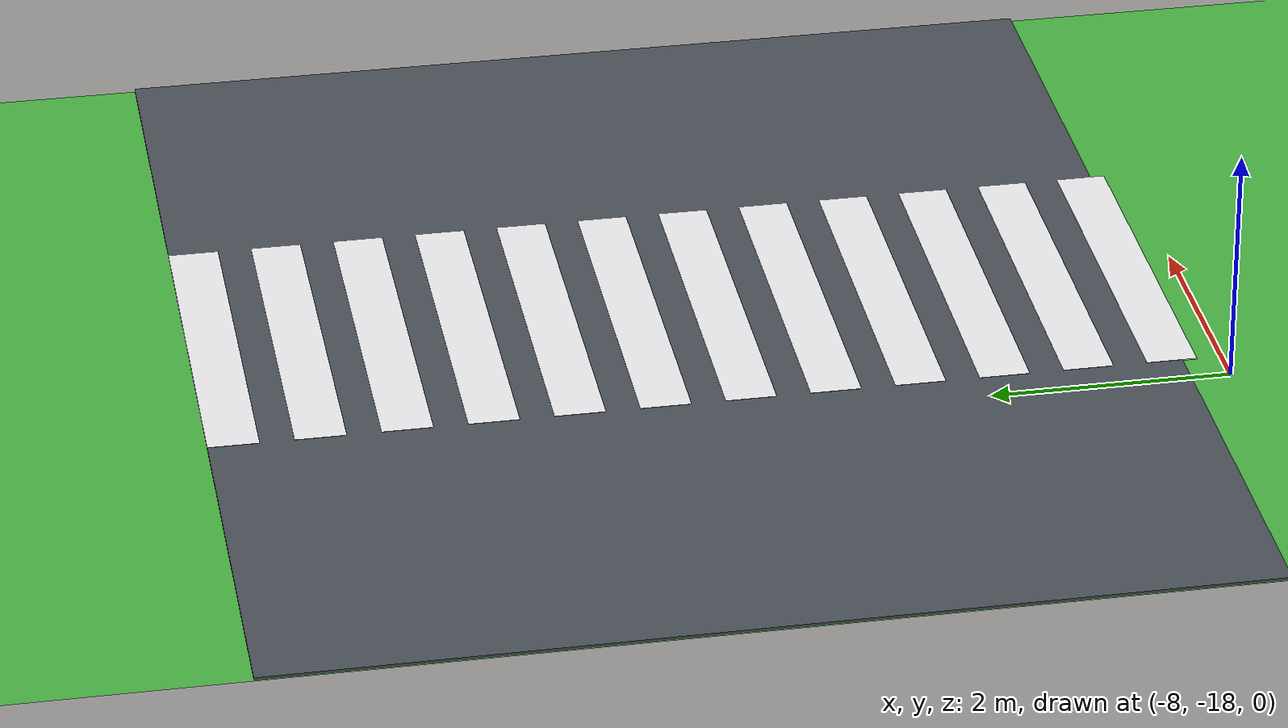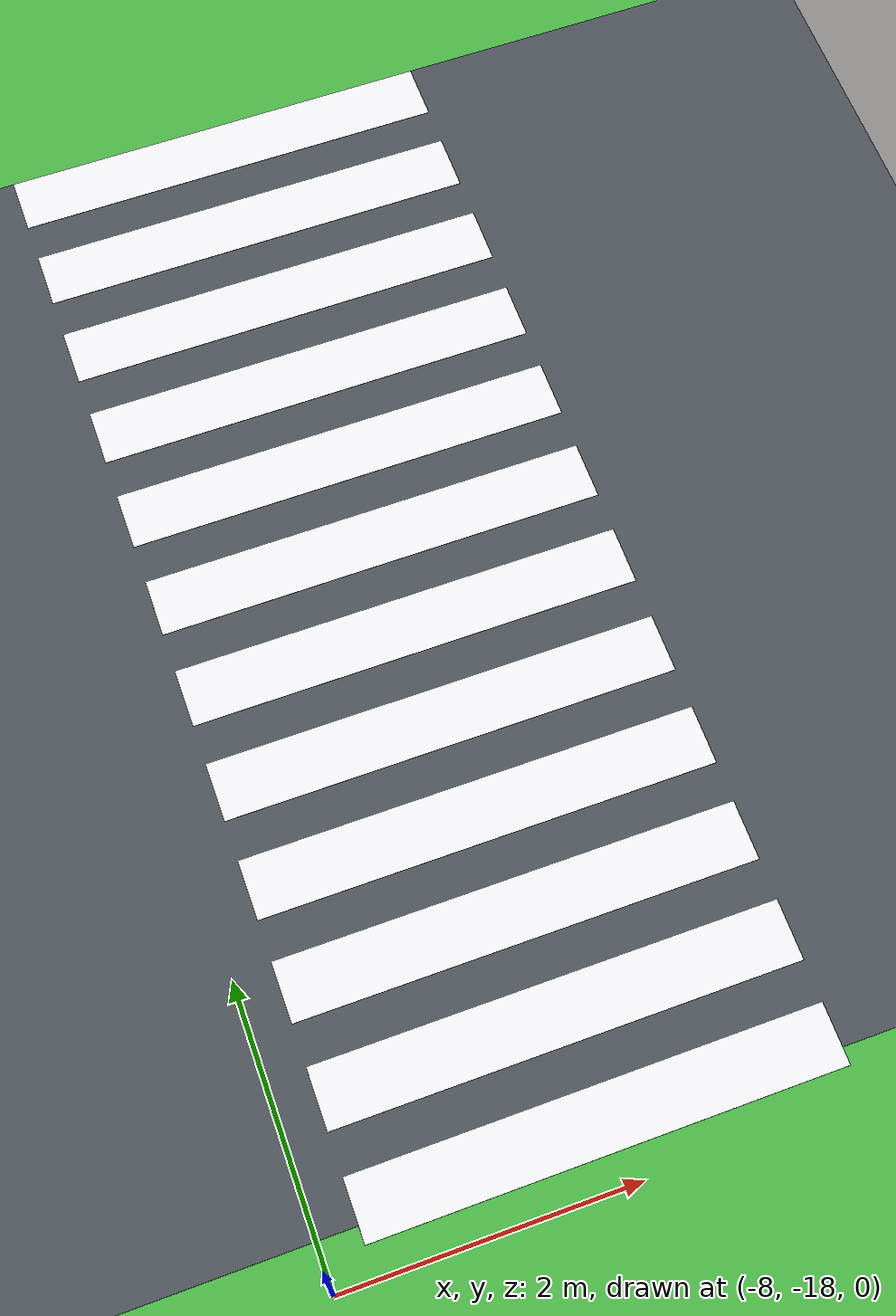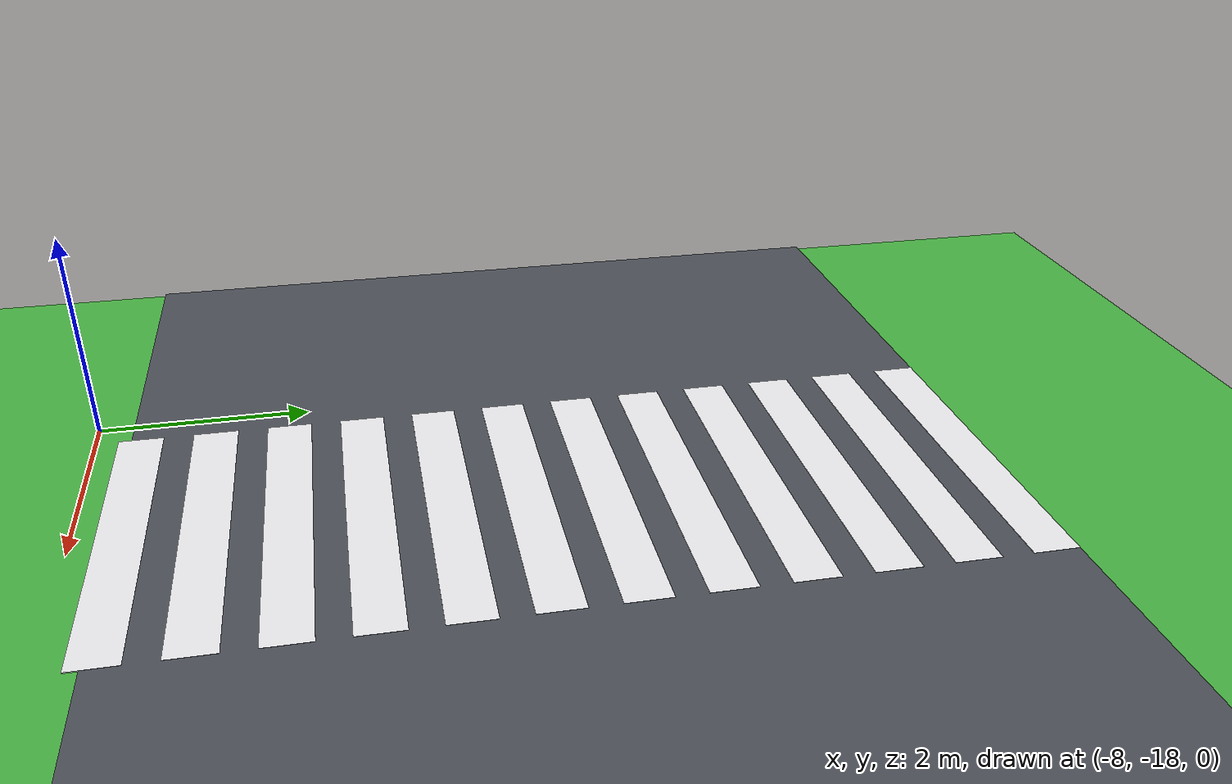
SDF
<sdf version="1.10">
 <world name="city_second">
  <model name="ground_plane">
   <static>true</static>
   <link name="link">
    <collision name="collision">
     <geometry><plane><normal>0 0 1</normal><size>300 300</size></plane></geometry>
    </collision>
    <visual name="visual">
     <geometry><plane><normal>0 0 1</normal><size>300 300</size></plane></geometry>
     <material>
      <ambient>0.280000001 0.689999998 0.25999999 1</ambient>
      <diffuse>0.280000001 0.689999998 0.25999999 1</diffuse>
      <specular>0.0299999993 0.0299999993 0.0299999993 1</specular>
     </material>
    </visual>
    <inertial>
     <mass>1</mass>
     <inertia><ixx>1</ixx><ixy>0</ixy><ixz>0</ixz><iyy>1</iyy><iyz>0</iyz><izz>1</izz></inertia>
    </inertial>
   </link>
  </model>
  <model name="crosswalk_v_2_1_east_5_5">
   <static>true</static>
   <pose>-6.1313199999999997 -13.727400000000001 0.017000000000000001 0 0 0</pose>
   <link name="stripe_1">
    <collision name="collision">
     <geometry><box><size>3.2000000000000002 0.41999999999999998 0.01</size></box></geometry>
    </collision>
    <visual name="visual">
     <geometry><box><size>3.2000000000000002 0.41999999999999998 0.01</size></box></geometry>
     <material>
      <ambient>0.920000017 0.920000017 0.930000007 1</ambient>
      <diffuse>0.920000017 0.920000017 0.930000007 1</diffuse>
      <specular>0.0299999993 0.0299999993 0.0299999993 1</specular>
     </material>
    </visual>
    <pose>0 -3.8500000000000001 0 0 0 0</pose>
    <inertial>
     <mass>1</mass>
     <inertia><ixx>1</ixx><ixy>0</ixy><ixz>0</ixz><iyy>1</iyy><iyz>0</iyz><izz>1</izz></inertia>
    </inertial>
   </link>
   <link name="stripe_2">
    <collision name="collision">
     <geometry><box><size>3.2000000000000002 0.41999999999999998 0.01</size></box></geometry>
    </collision>
    <visual name="visual">
     <geometry><box><size>3.2000000000000002 0.41999999999999998 0.01</size></box></geometry>
     <material>
      <ambient>0.920000017 0.920000017 0.930000007 1</ambient>
      <diffuse>0.920000017 0.920000017 0.930000007 1</diffuse>
      <specular>0.0299999993 0.0299999993 0.0299999993 1</specular>
     </material>
    </visual>
    <pose>0 -3.1499999999999968 0 0 0 0</pose>
    <inertial>
     <mass>1</mass>
     <inertia><ixx>1</ixx><ixy>0</ixy><ixz>0</ixz><iyy>1</iyy><iyz>0</iyz><izz>1</izz></inertia>
    </inertial>
   </link>
   <link name="stripe_3">
    <collision name="collision">
     <geometry><box><size>3.2000000000000002 0.41999999999999998 0.01</size></box></geometry>
    </collision>
    <visual name="visual">
     <geometry><box><size>3.2000000000000002 0.41999999999999998 0.01</size></box></geometry>
     <material>
      <ambient>0.920000017 0.920000017 0.930000007 1</ambient>
      <diffuse>0.920000017 0.920000017 0.930000007 1</diffuse>
      <specular>0.0299999993 0.0299999993 0.0299999993 1</specular>
     </material>
    </visual>
    <pose>0 -2.4499999999999975 0 0 0 0</pose>
    <inertial>
     <mass>1</mass>
     <inertia><ixx>1</ixx><ixy>0</ixy><ixz>0</ixz><iyy>1</iyy><iyz>0</iyz><izz>1</izz></inertia>
    </inertial>
   </link>
   <link name="stripe_4">
    <collision name="collision">
     <geometry><box><size>3.2000000000000002 0.41999999999999998 0.01</size></box></geometry>
    </collision>
    <visual name="visual">
     <geometry><box><size>3.2000000000000002 0.41999999999999998 0.01</size></box></geometry>
     <material>
      <ambient>0.920000017 0.920000017 0.930000007 1</ambient>
      <diffuse>0.920000017 0.920000017 0.930000007 1</diffuse>
      <specular>0.0299999993 0.0299999993 0.0299999993 1</specular>
     </material>
    </visual>
    <pose>0 -1.7499999999999982 0 0 0 0</pose>
    <inertial>
     <mass>1</mass>
     <inertia><ixx>1</ixx><ixy>0</ixy><ixz>0</ixz><iyy>1</iyy><iyz>0</iyz><izz>1</izz></inertia>
    </inertial>
   </link>
   <link name="stripe_5">
    <collision name="collision">
     <geometry><box><size>3.2000000000000002 0.41999999999999998 0.01</size></box></geometry>
    </collision>
    <visual name="visual">
     <geometry><box><size>3.2000000000000002 0.41999999999999998 0.01</size></box></geometry>
     <material>
      <ambient>0.920000017 0.920000017 0.930000007 1</ambient>
      <diffuse>0.920000017 0.920000017 0.930000007 1</diffuse>
      <specular>0.0299999993 0.0299999993 0.0299999993 1</specular>
     </material>
    </visual>
    <pose>0 -1.0499999999999989 0 0 0 0</pose>
    <inertial>
     <mass>1</mass>
     <inertia><ixx>1</ixx><ixy>0</ixy><ixz>0</ixz><iyy>1</iyy><iyz>0</iyz><izz>1</izz></inertia>
    </inertial>
   </link>
   <link name="stripe_6">
    <collision name="collision">
     <geometry><box><size>3.2000000000000002 0.41999999999999998 0.01</size></box></geometry>
    </collision>
    <visual name="visual">
     <geometry><box><size>3.2000000000000002 0.41999999999999998 0.01</size></box></geometry>
     <material>
      <ambient>0.920000017 0.920000017 0.930000007 1</ambient>
      <diffuse>0.920000017 0.920000017 0.930000007 1</diffuse>
      <specular>0.0299999993 0.0299999993 0.0299999993 1</specular>
     </material>
    </visual>
    <pose>0 -0.34999999999999787 0 0 0 0</pose>
    <inertial>
     <mass>1</mass>
     <inertia><ixx>1</ixx><ixy>0</ixy><ixz>0</ixz><iyy>1</iyy><iyz>0</iyz><izz>1</izz></inertia>
    </inertial>
   </link>
   <link name="stripe_7">
    <collision name="collision">
     <geometry><box><size>3.2000000000000002 0.41999999999999998 0.01</size></box></geometry>
    </collision>
    <visual name="visual">
     <geometry><box><size>3.2000000000000002 0.41999999999999998 0.01</size></box></geometry>
     <material>
      <ambient>0.920000017 0.920000017 0.930000007 1</ambient>
      <diffuse>0.920000017 0.920000017 0.930000007 1</diffuse>
      <specular>0.0299999993 0.0299999993 0.0299999993 1</specular>
     </material>
    </visual>
    <pose>0 0.35000000000000142 0 0 0 0</pose>
    <inertial>
     <mass>1</mass>
     <inertia><ixx>1</ixx><ixy>0</ixy><ixz>0</ixz><iyy>1</iyy><iyz>0</iyz><izz>1</izz></inertia>
    </inertial>
   </link>
   <link name="stripe_8">
    <collision name="collision">
     <geometry><box><size>3.2000000000000002 0.41999999999999998 0.01</size></box></geometry>
    </collision>
    <visual name="visual">
     <geometry><box><size>3.2000000000000002 0.41999999999999998 0.01</size></box></geometry>
     <material>
      <ambient>0.920000017 0.920000017 0.930000007 1</ambient>
      <diffuse>0.920000017 0.920000017 0.930000007 1</diffuse>
      <specular>0.0299999993 0.0299999993 0.0299999993 1</specular>
     </material>
    </visual>
    <pose>0 1.0500000000000025 0 0 0 0</pose>
    <inertial>
     <mass>1</mass>
     <inertia><ixx>1</ixx><ixy>0</ixy><ixz>0</ixz><iyy>1</iyy><iyz>0</iyz><izz>1</izz></inertia>
    </inertial>
   </link>
   <link name="stripe_9">
    <collision name="collision">
     <geometry><box><size>3.2000000000000002 0.41999999999999998 0.01</size></box></geometry>
    </collision>
    <visual name="visual">
     <geometry><box><size>3.2000000000000002 0.41999999999999998 0.01</size></box></geometry>
     <material>
      <ambient>0.920000017 0.920000017 0.930000007 1</ambient>
      <diffuse>0.920000017 0.920000017 0.930000007 1</diffuse>
      <specular>0.0299999993 0.0299999993 0.0299999993 1</specular>
     </material>
    </visual>
    <pose>0 1.7500000000000018 0 0 0 0</pose>
    <inertial>
     <mass>1</mass>
     <inertia><ixx>1</ixx><ixy>0</ixy><ixz>0</ixz><iyy>1</iyy><iyz>0</iyz><izz>1</izz></inertia>
    </inertial>
   </link>
   <link name="stripe_10">
    <collision name="collision">
     <geometry><box><size>3.2000000000000002 0.41999999999999998 0.01</size></box></geometry>
    </collision>
    <visual name="visual">
     <geometry><box><size>3.2000000000000002 0.41999999999999998 0.01</size></box></geometry>
     <material>
      <ambient>0.920000017 0.920000017 0.930000007 1</ambient>
      <diffuse>0.920000017 0.920000017 0.930000007 1</diffuse>
      <specular>0.0299999993 0.0299999993 0.0299999993 1</specular>
     </material>
    </visual>
    <pose>0 2.4500000000000011 0 0 0 0</pose>
    <inertial>
     <mass>1</mass>
     <inertia><ixx>1</ixx><ixy>0</ixy><ixz>0</ixz><iyy>1</iyy><iyz>0</iyz><izz>1</izz></inertia>
    </inertial>
   </link>
   <link name="stripe_11">
    <collision name="collision">
     <geometry><box><size>3.2000000000000002 0.41999999999999998 0.01</size></box></geometry>
    </collision>
    <visual name="visual">
     <geometry><box><size>3.2000000000000002 0.41999999999999998 0.01</size></box></geometry>
     <material>
      <ambient>0.920000017 0.920000017 0.930000007 1</ambient>
      <diffuse>0.920000017 0.920000017 0.930000007 1</diffuse>
      <specular>0.0299999993 0.0299999993 0.0299999993 1</specular>
     </material>
    </visual>
    <pose>0 3.1500000000000021 0 0 0 0</pose>
    <inertial>
     <mass>1</mass>
     <inertia><ixx>1</ixx><ixy>0</ixy><ixz>0</ixz><iyy>1</iyy><iyz>0</iyz><izz>1</izz></inertia>
    </inertial>
   </link>
   <link name="stripe_12">
    <collision name="collision">
     <geometry><box><size>3.2000000000000002 0.41999999999999998 0.01</size></box></geometry>
    </collision>
    <visual name="visual">
     <geometry><box><size>3.2000000000000002 0.41999999999999998 0.01</size></box></geometry>
     <material>
      <ambient>0.920000017 0.920000017 0.930000007 1</ambient>
      <diffuse>0.920000017 0.920000017 0.930000007 1</diffuse>
      <specular>0.0299999993 0.0299999993 0.0299999993 1</specular>
     </material>
    </visual>
    <pose>0 3.8500000000000014 0 0 0 0</pose>
    <inertial>
     <mass>1</mass>
     <inertia><ixx>1</ixx><ixy>0</ixy><ixz>0</ixz><iyy>1</iyy><iyz>0</iyz><izz>1</izz></inertia>
    </inertial>
   </link>
  </model>
  <model name="road_h_2_1">
   <static>true</static>
   <pose>0.20479899644851685 -13.668000221252441 0.0099999997764825821 0 0 0</pose>
   <link name="link">
    <collision name="collision"><geometry><box><size>84 8 0.02</size></box></geometry></collision>
    <visual name="visual">
     <geometry><box><size>84 8 0.02</size></box></geometry>
     <material>
      <ambient>0.289999992 0.310000002 0.340000004 1</ambient>
      <diffuse>0.289999992 0.310000002 0.340000004 1</diffuse>
      <specular>0.0299999993 0.0299999993 0.0299999993 1</specular>
     </material>
    </visual>
    <inertial>
     <mass>1</mass>
     <inertia><ixx>1</ixx><ixy>0</ixy><ixz>0</ixz><iyy>1</iyy><iyz>0</iyz><izz>1</izz></inertia>
    </inertial>
   </link>
  </model>
 </world>
</sdf>
